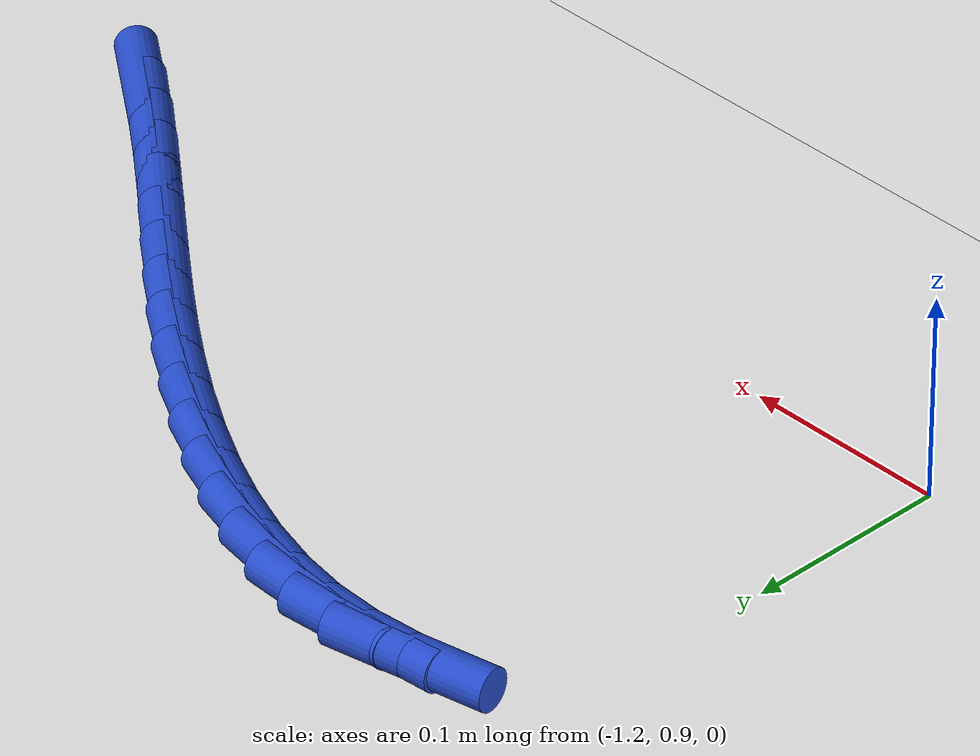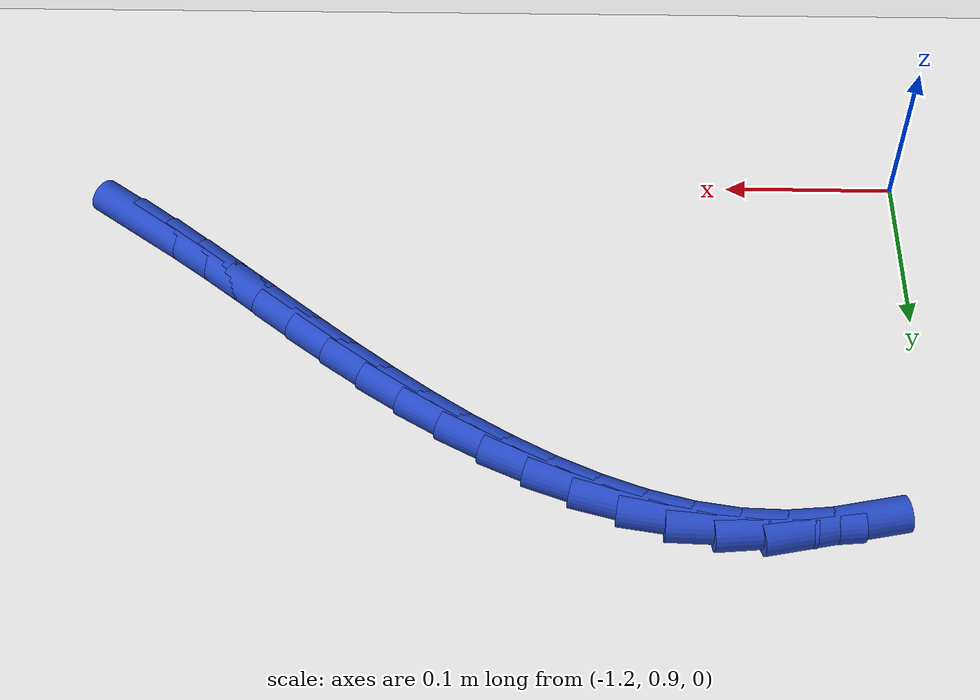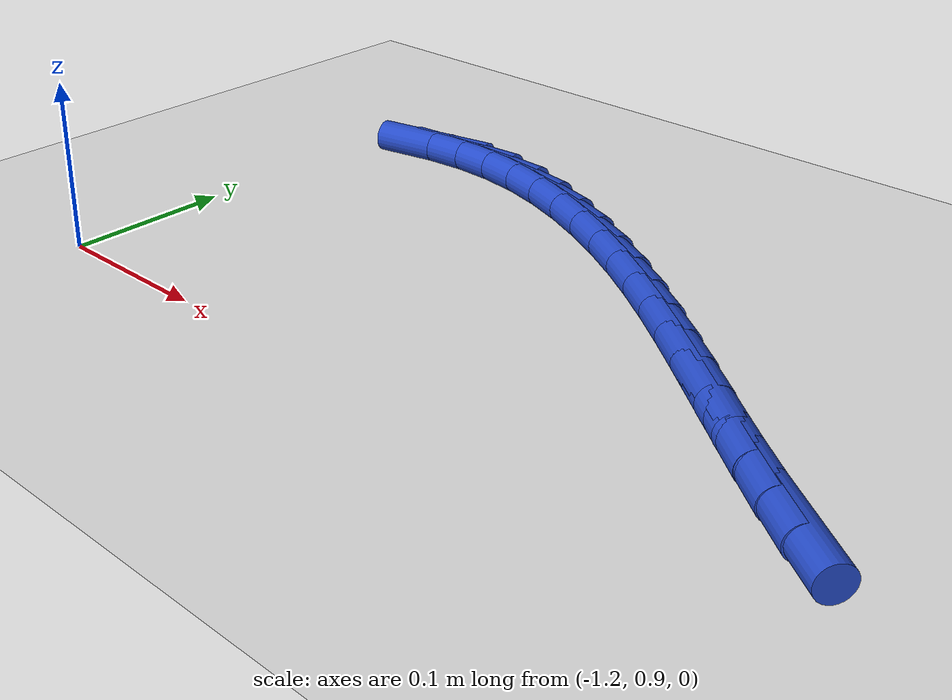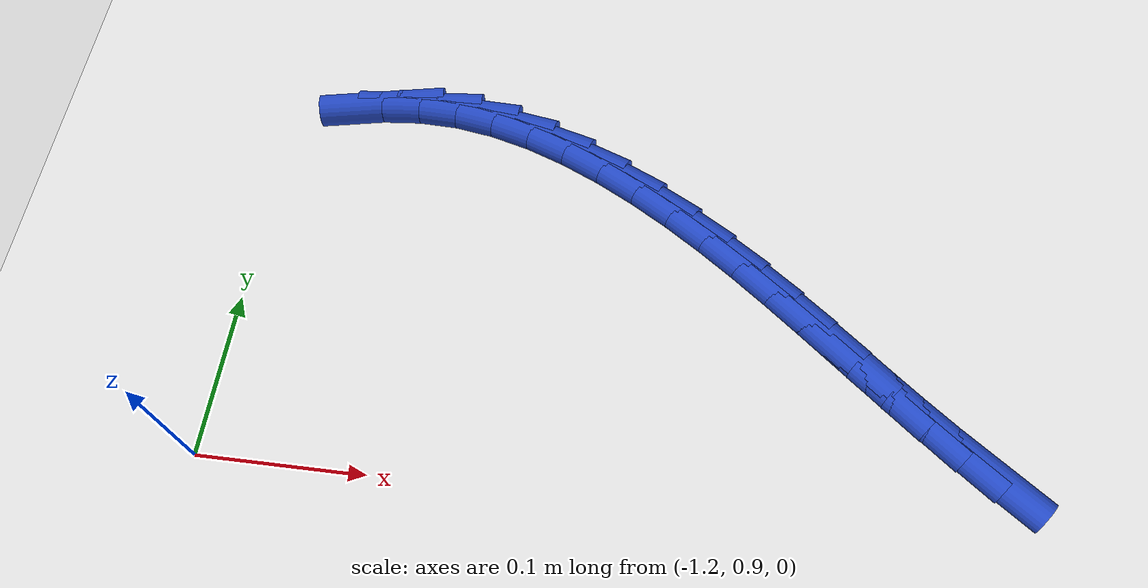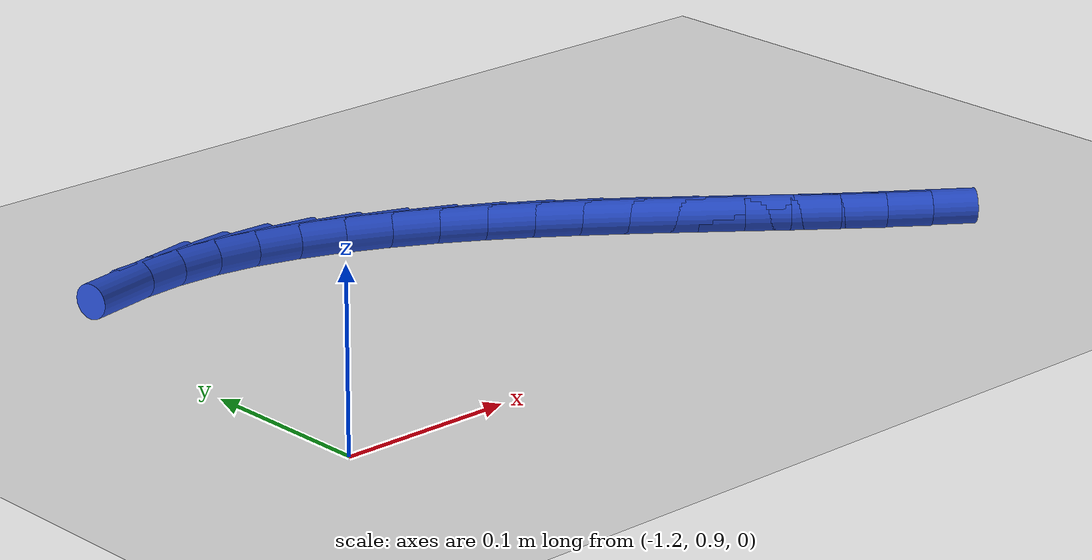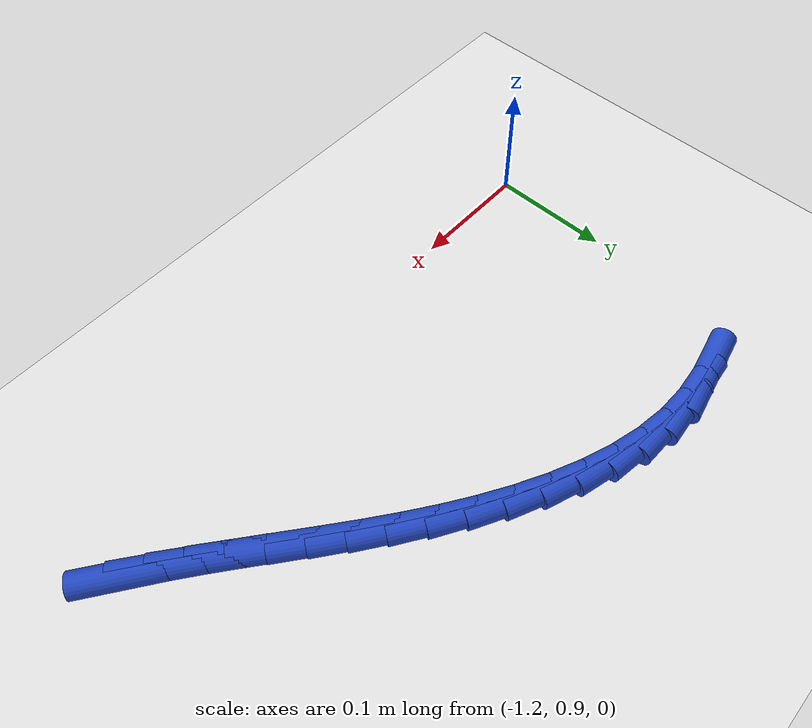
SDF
<sdf version="1.6">
 <world name="default">
  <model name="ground_plane">
   <static>1</static>
   <link name="link">
    <collision name="collision">
     <geometry><plane><normal>0 0 1</normal><size>100 100</size></plane></geometry>
     <surface><friction><ode><mu>100</mu><mu2>50</mu2></ode></friction></surface>
    </collision>
    <visual name="visual">
     <cast_shadows>0</cast_shadows>
     <geometry><plane><normal>0 0 1</normal><size>100 100</size></plane></geometry>
     <material>
      <script><uri>file://media/materials/scripts/gazebo.material</uri><name>Gazebo/WhiteGlow</name></script>
     </material>
    </visual>
   </link>
  </model>
  <model name="line">
   <link name="link_51">
    <pose>-0.7561215364901788 0.9415855170280488 0.01 0 1.57 -0.6250550696593198</pose>
    <collision name="collision">
     <geometry><cylinder><radius>0.01</radius><length>0.08</length></cylinder></geometry>
    </collision>
    <visual name="visual">
     <material>
      <script><name>Gazebo/Blue</name><uri>file://media/materials/scripts/gazebo.material</uri></script>
     </material>
     <geometry><cylinder><radius>0.01</radius><length>0.08</length></cylinder></geometry>
    </visual>
   </link>
   <link name="link_52">
    <pose>-0.7768531219800193 0.9565447694369497 0.01 0 1.57 -0.6526246134478019</pose>
    <collision name="collision">
     <geometry><cylinder><radius>0.01</radius><length>0.08</length></cylinder></geometry>
    </collision>
    <visual name="visual">
     <material>
      <script><name>Gazebo/Blue</name><uri>file://media/materials/scripts/gazebo.material</uri></script>
     </material>
     <geometry><cylinder><radius>0.01</radius><length>0.08</length></cylinder></geometry>
    </visual>
   </link>
   <link name="link_53">
    <pose>-0.7973014967922487 0.9721745684408953 0.01 0 1.57 -0.670656787979252</pose>
    <collision name="collision">
     <geometry><cylinder><radius>0.01</radius><length>0.08</length></cylinder></geometry>
    </collision>
    <visual name="visual">
     <material>
      <script><name>Gazebo/Blue</name><uri>file://media/materials/scripts/gazebo.material</uri></script>
     </material>
     <geometry><cylinder><radius>0.01</radius><length>0.08</length></cylinder></geometry>
    </visual>
   </link>
   <link name="link_54">
    <pose>-0.817609360399337 0.9882852792231259 0.01 0 1.57 -0.6793457127340718</pose>
    <collision name="collision">
     <geometry><cylinder><radius>0.01</radius><length>0.08</length></cylinder></geometry>
    </collision>
    <visual name="visual">
     <material>
      <script><name>Gazebo/Blue</name><uri>file://media/materials/scripts/gazebo.material</uri></script>
     </material>
     <geometry><cylinder><radius>0.01</radius><length>0.08</length></cylinder></geometry>
    </visual>
   </link>
   <link name="link_55">
    <pose>-0.8379194122910979 1.0046872668638427 0.01 0 1.57 -0.6788908529354363</pose>
    <collision name="collision">
     <geometry><cylinder><radius>0.01</radius><length>0.08</length></cylinder></geometry>
    </collision>
    <visual name="visual">
     <material>
      <script><name>Gazebo/Blue</name><uri>file://media/materials/scripts/gazebo.material</uri></script>
     </material>
     <geometry><cylinder><radius>0.01</radius><length>0.08</length></cylinder></geometry>
    </visual>
   </link>
   <link name="link_56">
    <pose>-0.858374351957344 1.0211908964432463 0.01 0 1.57 -0.6694750202575084</pose>
    <collision name="collision">
     <geometry><cylinder><radius>0.01</radius><length>0.08</length></cylinder></geometry>
    </collision>
    <visual name="visual">
     <material>
      <script><name>Gazebo/Blue</name><uri>file://media/materials/scripts/gazebo.material</uri></script>
     </material>
     <geometry><cylinder><radius>0.01</radius><length>0.08</length></cylinder></geometry>
    </visual>
   </link>
   <link name="link_57">
    <pose>-0.8791168788878889 1.0376065330415372 0.01 0 1.57 -0.6512661873461716</pose>
    <collision name="collision">
     <geometry><cylinder><radius>0.01</radius><length>0.08</length></cylinder></geometry>
    </collision>
    <visual name="visual">
     <material>
      <script><name>Gazebo/Blue</name><uri>file://media/materials/scripts/gazebo.material</uri></script>
     </material>
     <geometry><cylinder><radius>0.01</radius><length>0.08</length></cylinder></geometry>
    </visual>
   </link>
   <link name="link_58">
    <pose>-0.9002896925725462 1.053744541738917 0.01 0 1.57 -0.6244399604506423</pose>
    <collision name="collision">
     <geometry><cylinder><radius>0.01</radius><length>0.08</length></cylinder></geometry>
    </collision>
    <visual name="visual">
     <material>
      <script><name>Gazebo/Blue</name><uri>file://media/materials/scripts/gazebo.material</uri></script>
     </material>
     <geometry><cylinder><radius>0.01</radius><length>0.08</length></cylinder></geometry>
    </visual>
   </link>
   <link name="link_59">
    <pose>-0.9220354925011287 1.0694152876155858 0.01 0 1.57 -0.5892198338551388</pose>
    <collision name="collision">
     <geometry><cylinder><radius>0.01</radius><length>0.08</length></cylinder></geometry>
    </collision>
    <visual name="visual">
     <material>
      <script><name>Gazebo/Blue</name><uri>file://media/materials/scripts/gazebo.material</uri></script>
     </material>
     <geometry><cylinder><radius>0.01</radius><length>0.08</length></cylinder></geometry>
    </visual>
   </link>
   <link name="link_60">
    <pose>-0.9444969781634495 1.0844291357517444 0.01 0 1.57 -0.5458840641427832</pose>
    <collision name="collision">
     <geometry><cylinder><radius>0.01</radius><length>0.08</length></cylinder></geometry>
    </collision>
    <visual name="visual">
     <material>
      <script><name>Gazebo/Blue</name><uri>file://media/materials/scripts/gazebo.material</uri></script>
     </material>
     <geometry><cylinder><radius>0.01</radius><length>0.08</length></cylinder></geometry>
    </visual>
   </link>
   <link name="link_61">
    <pose>-0.9677831875895506 1.098574491032894 0.01 0 1.57 -0.4939353453942742</pose>
    <collision name="collision">
     <geometry><cylinder><radius>0.01</radius><length>0.08</length></cylinder></geometry>
    </collision>
    <visual name="visual">
     <material>
      <script><name>Gazebo/Blue</name><uri>file://media/materials/scripts/gazebo.material</uri></script>
     </material>
     <geometry><cylinder><radius>0.01</radius><length>0.08</length></cylinder></geometry>
    </visual>
   </link>
   <link name="link_62">
    <pose>-0.9917930955604587 1.11150271646106 0.01 0 1.57 -0.4316734780079301</pose>
    <collision name="collision">
     <geometry><cylinder><radius>0.01</radius><length>0.08</length></cylinder></geometry>
    </collision>
    <visual name="visual">
     <material>
      <script><name>Gazebo/Blue</name><uri>file://media/materials/scripts/gazebo.material</uri></script>
     </material>
     <geometry><cylinder><radius>0.01</radius><length>0.08</length></cylinder></geometry>
    </visual>
   </link>
   <link name="link_63">
    <pose>-1.0163447941989177 1.1228124084935085 0.01 0 1.57 -0.3569346080916648</pose>
    <collision name="collision">
     <geometry><cylinder><radius>0.01</radius><length>0.08</length></cylinder></geometry>
    </collision>
    <visual name="visual">
     <material>
      <script><name>Gazebo/Blue</name><uri>file://media/materials/scripts/gazebo.material</uri></script>
     </material>
     <geometry><cylinder><radius>0.01</radius><length>0.08</length></cylinder></geometry>
    </visual>
   </link>
   <link name="link_64">
    <pose>-1.0412562056329908 1.1321020526857102 0.01 0 1.57 -0.26720207361551657</pose>
    <collision name="collision">
     <geometry><cylinder><radius>0.01</radius><length>0.08</length></cylinder></geometry>
    </collision>
    <visual name="visual">
     <material>
      <script><name>Gazebo/Blue</name><uri>file://media/materials/scripts/gazebo.material</uri></script>
     </material>
     <geometry><cylinder><radius>0.01</radius><length>0.08</length></cylinder></geometry>
    </visual>
   </link>
   <link name="link_65">
    <pose>-1.0663452519907428 1.1389701345931373 0.01 0 1.57 -0.15987820856925658</pose>
    <collision name="collision">
     <geometry><cylinder><radius>0.01</radius><length>0.08</length></cylinder></geometry>
    </collision>
    <visual name="visual">
     <material>
      <script><name>Gazebo/Blue</name><uri>file://media/materials/scripts/gazebo.material</uri></script>
     </material>
     <geometry><cylinder><radius>0.01</radius><length>0.08</length></cylinder></geometry>
    </visual>
   </link>
   <link name="link_66">
    <pose>-1.0914298554002373 1.1430151397712618 0.01 0 1.57 -0.035366285686373206</pose>
    <collision name="collision">
     <geometry><cylinder><radius>0.01</radius><length>0.08</length></cylinder></geometry>
    </collision>
    <visual name="visual">
     <material>
      <script><name>Gazebo/Blue</name><uri>file://media/materials/scripts/gazebo.material</uri></script>
     </material>
     <geometry><cylinder><radius>0.01</radius><length>0.08</length></cylinder></geometry>
    </visual>
   </link>
   <link name="link_67">
    <pose>-1.1163445619069452 1.1438966479525723 0.01 0 1.57 0.08777751779489701</pose>
    <collision name="collision">
     <geometry><cylinder><radius>0.01</radius><length>0.08</length></cylinder></geometry>
    </collision>
    <visual name="visual">
     <material>
      <script><name>Gazebo/Blue</name><uri>file://media/materials/scripts/gazebo.material</uri></script>
     </material>
     <geometry><cylinder><radius>0.01</radius><length>0.08</length></cylinder></geometry>
    </visual>
   </link>
   <link name="link_68">
    <pose>-1.1410459813712508 1.141722832791979 0.01 0 1.57 0.19822811877074115</pose>
    <collision name="collision">
     <geometry><cylinder><radius>0.01</radius><length>0.08</length></cylinder></geometry>
    </collision>
    <visual name="visual">
     <material>
      <script><name>Gazebo/Blue</name><uri>file://media/materials/scripts/gazebo.material</uri></script>
     </material>
     <geometry><cylinder><radius>0.01</radius><length>0.08</length></cylinder></geometry>
    </visual>
   </link>
  </model>
 </world>
</sdf>
